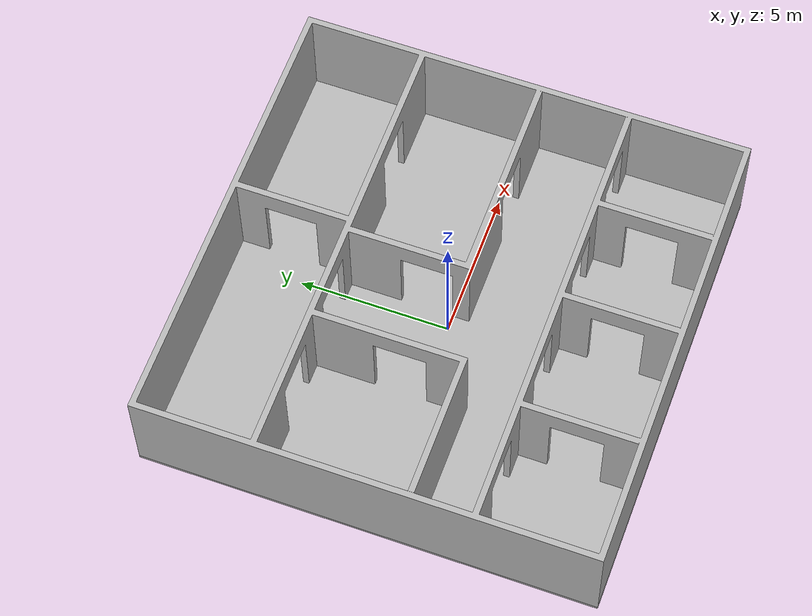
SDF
<?xml version="1.0"?>
<sdf version="1.5">
    <model name="house">
        <static>true</static>
        <link name="link">
            <collision name="collision_wall">
                <pose>0 0 0.05 0 0 0</pose>
                <geometry>
                    <mesh>
                        <uri>model://house_scene_2/meshes/scene_two.stl</uri>
                    </mesh>
                </geometry>
            </collision>
            <visual name="visual_walls">
              <pose>0 0 0.05 0 0 0</pose>
              <geometry>
              <mesh>
                 <uri>model://house_scene_2/meshes/scene_two_house_with_qr_30.dae</uri>
              </mesh>
              </geometry>
              <material>
                  <script>
                      <uri>model://house_scene_2/materials/scripts</uri>
                      <uri>model://house_scene_2/materials/textures</uri>
                      <name>houseMat/Diffuse</name>
                  </script>
              </material>
             </visual>

             <collision name="collision_flor">
                <pose>0 0 0.05 0 0 0</pose>
                <geometry>
                    <mesh>
                        <uri>model://house_scene_2/meshes/scene_two_house_wallpapers_flor.dae</uri>
                    </mesh>
                </geometry>
            </collision>
            <visual name="visual_flor">
              <pose>0 0 0.05 0 0 0</pose>
              <geometry>
              <mesh>
                 <uri>model://house_scene_2/meshes/scene_two_house_wallpapers_flor.dae</uri>
              </mesh>
              </geometry>
              <material>
                  <script>
                      <uri>model://house_scene_2/materials/scripts</uri>
                      <uri>model://house_scene_2/materials/textures</uri>
                      <name>houseMat/Diffuse</name>
                  </script>
              </material>
             </visual>

        </link>
    </model>
</sdf>
